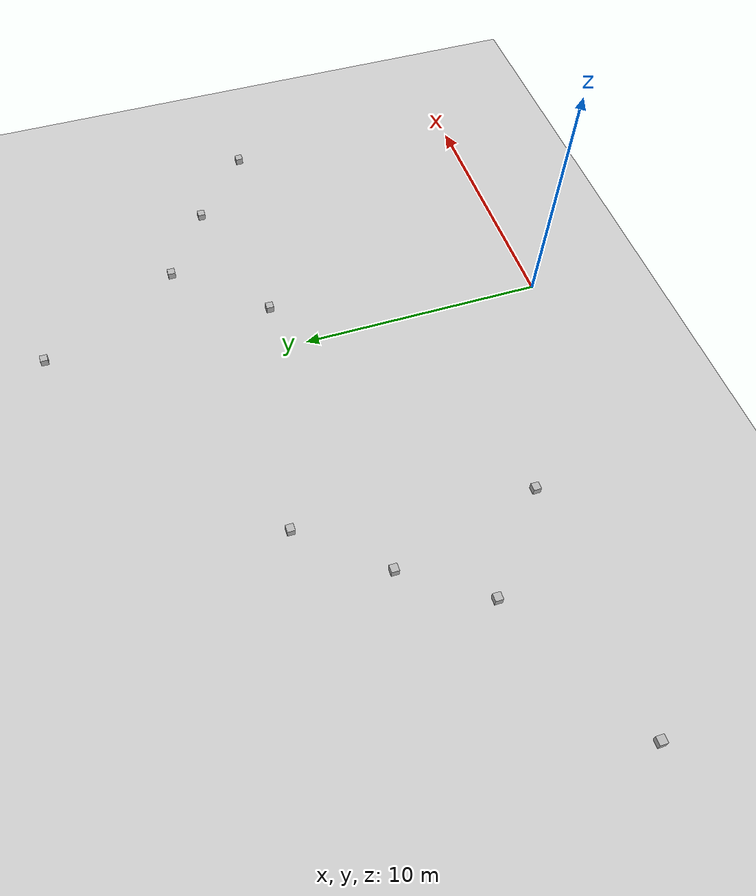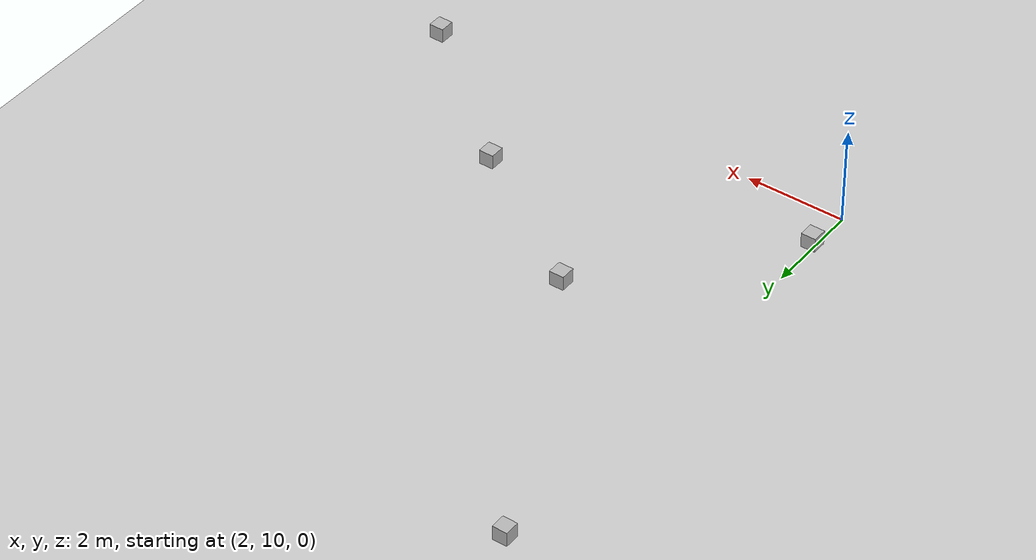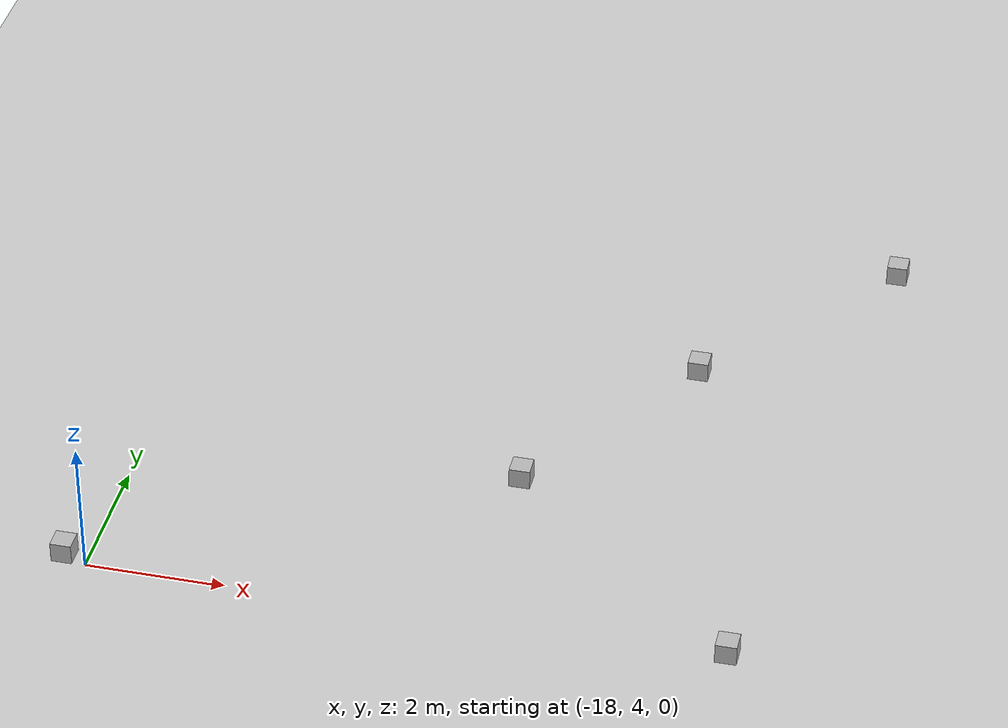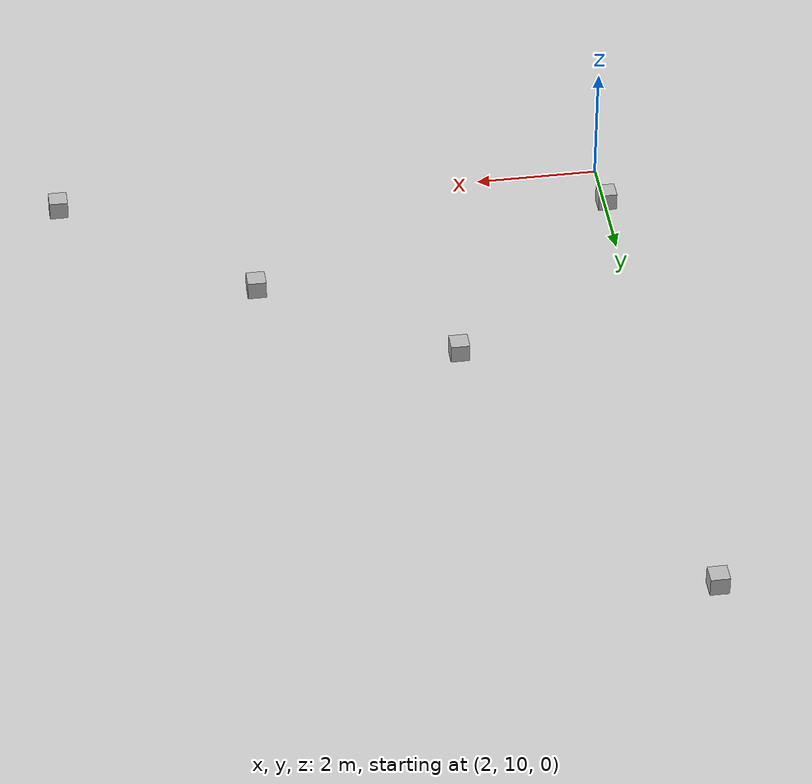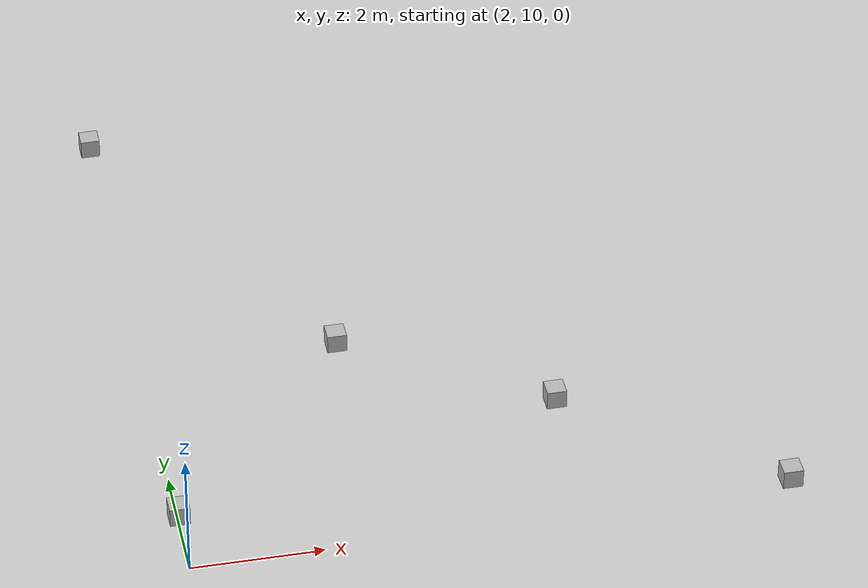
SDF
<?xml version="1.0" encoding="UTF-8"?>
<sdf version="1.9">
  <world name="maze">
    <physics type="ode">
      <max_step_size>0.004</max_step_size>
      <real_time_factor>1.0</real_time_factor>
      <real_time_update_rate>250</real_time_update_rate>
    </physics>
    <plugin name="gz::sim::systems::Physics" filename="gz-sim-physics-system" />
    <plugin name="gz::sim::systems::UserCommands" filename="gz-sim-user-commands-system" />
    <plugin name="gz::sim::systems::SceneBroadcaster" filename="gz-sim-scene-broadcaster-system" />
    <plugin name="gz::sim::systems::Contact" filename="gz-sim-contact-system" />
    <plugin name="gz::sim::systems::Imu" filename="gz-sim-imu-system" />
    <plugin name="gz::sim::systems::AirPressure" filename="gz-sim-air-pressure-system" />
    <plugin name="gz::sim::systems::ApplyLinkWrench" filename="gz-sim-apply-link-wrench-system" />
    <plugin name="gz::sim::systems::NavSat" filename="gz-sim-navsat-system" />
    <plugin name="gz::sim::systems::Sensors" filename="gz-sim-sensors-system">
      <render_engine>ogre2</render_engine>
    </plugin>

    <gui fullscreen="0">
      <plugin filename="GzScene3D" name="3D View">
        <gz-gui>
          <title>3D View</title>
          <property key="showTitleBar" type="bool">false</property>
          <property key="state" type="string">docked</property>
        </gz-gui>
        <engine>ogre2</engine>
        <scene>scene</scene>
        <ambient_light>0.4 0.4 0.4</ambient_light>
        <background_color>0.8 0.8 0.8</background_color>
        <camera_pose>-6 0 6 0 0.5 0</camera_pose>
      </plugin>
      <plugin filename="WorldControl" name="World control">
        <gz-gui>
          <title>World control</title>
          <property type="bool" key="showTitleBar">false</property>
          <property type="bool" key="resizable">false</property>
          <property type="double" key="height">72</property>
          <property type="double" key="width">150</property>
          <property type="double" key="z">1</property>
          <property type="string" key="state">floating</property>
          <anchors target="3D View">
            <line own="left" target="left" />
            <line own="bottom" target="bottom" />
          </anchors>
        </gz-gui>
        <play_pause>true</play_pause>
        <step>true</step>
        <start_paused>true</start_paused>
        <use_event>false</use_event>
        <start_paused>true</start_paused>
      </plugin>
      <plugin filename="WorldStats" name="World stats">
        <gz-gui>
          <title>World stats</title>
          <property type="bool" key="showTitleBar">false</property>
          <property type="bool" key="resizable">false</property>
          <property type="double" key="height">110</property>
          <property type="double" key="width">290</property>
          <property type="double" key="z">1</property>
          <property type="string" key="state">floating</property>
          <anchors target="3D View">
            <line own="right" target="right" />
            <line own="bottom" target="bottom" />
          </anchors>
        </gz-gui>
        <sim_time>false</sim_time>
        <real_time>false</real_time>
        <real_time_factor>true</real_time_factor>
        <iterations>true</iterations>
      </plugin>
      <plugin filename="Shapes" name="Shapes">
        <gz-gui>
          <property key="resizable" type="bool">false</property>
          <property key="x" type="double">0</property>
          <property key="y" type="double">0</property>
          <property key="width" type="double">250</property>
          <property key="height" type="double">50</property>
          <property key="state" type="string">floating</property>
          <property key="showTitleBar" type="bool">false</property>
          <property key="cardBackground" type="string">#666666</property>
        </gz-gui>
      </plugin>
      <plugin filename="Lights" name="Lights">
        <gz-gui>
          <property key="resizable" type="bool">false</property>
          <property key="x" type="double">250</property>
          <property key="y" type="double">0</property>
          <property key="width" type="double">150</property>
          <property key="height" type="double">50</property>
          <property key="state" type="string">floating</property>
          <property key="showTitleBar" type="bool">false</property>
          <property key="cardBackground" type="string">#666666</property>
        </gz-gui>
      </plugin>
      <plugin filename="TransformControl" name="Transform control">
        <gz-gui>
          <property key="resizable" type="bool">false</property>
          <property key="x" type="double">400</property>
          <property key="y" type="double">0</property>
          <property key="width" type="double">250</property>
          <property key="height" type="double">50</property>
          <property key="state" type="string">floating</property>
          <property key="showTitleBar" type="bool">false</property>
          <property key="cardBackground" type="string">#777777</property>
        </gz-gui>
      </plugin>
    </gui>

    <gravity>0 0 -9.8</gravity>
    <magnetic_field>6e-06 2.3e-05 -4.2e-05</magnetic_field>
    <atmosphere type="adiabatic" />
    <scene>
      <grid>false</grid>
      <ambient>0.4 0.4 0.4 1</ambient>
      <background>0.7 0.7 0.7 1</background>
      <shadows>true</shadows>
    </scene>

    <model name="ground_plane">
      <static>true</static>
      <link name="link">
        <collision name="collision">
          <geometry>
            <plane>
              <normal>0 0 1</normal>
              <size>1 1</size>
            </plane>
          </geometry>
          <surface>
            <friction>
              <ode />
            </friction>
            <bounce />
            <contact />
          </surface>
        </collision>
        <visual name="visual">
          <geometry>
            <plane>
              <normal>0 0 1</normal>
              <size>100 100</size>
            </plane>
          </geometry>
          <material>
            <ambient>0.8 0.8 0.8 1</ambient>
            <diffuse>0.8 0.8 0.8 1</diffuse>
            <specular>0.8 0.8 0.8 1</specular>
          </material>
        </visual>
        <pose>0 0 0 0 -0 0</pose>
        <inertial>
          <pose>0 0 0 0 -0 0</pose>
          <mass>1</mass>
          <inertia>
            <ixx>1</ixx>
            <ixy>0</ixy>
            <ixz>0</ixz>
            <iyy>1</iyy>
            <iyz>0</iyz>
            <izz>1</izz>
          </inertia>
        </inertial>
        <enable_wind>false</enable_wind>
      </link>
      <pose>0 0 0 0 -0 0</pose>
      <self_collide>false</self_collide>
    </model>

    <include>
      <name>cube_1</name>
      <pose>5 2 0 0 0 0</pose>
      <uri>model://cube</uri>
    </include>

    <include>
      <name>cube_2</name>
      <pose>0 7 0 0 0 1.57</pose>
      <uri>model://cube</uri>
    </include>

    <light name="sunUTC" type="directional">
      <pose>0 0 500 0 -0 0</pose>
      <cast_shadows>true</cast_shadows>
      <intensity>1</intensity>
      <direction>0.001 0.625 -0.78</direction>
      <diffuse>0.904 0.904 0.904 1</diffuse>
      <specular>0.271 0.271 0.271 1</specular>
      <attenuation>
        <range>2000</range>
        <linear>0</linear>
        <constant>1</constant>
        <quadratic>0</quadratic>
      </attenuation>
      <spot>
        <inner_angle>0</inner_angle>
        <outer_angle>0</outer_angle>
        <falloff>0</falloff>
      </spot>
    </light>

    <spherical_coordinates>
      <surface_model>EARTH_WGS84</surface_model>
      <world_frame_orientation>ENU</world_frame_orientation>
      <latitude_deg>47.397971057728974</latitude_deg>
      <longitude_deg> 8.546163739800146</longitude_deg>
      <elevation>0</elevation>
    </spherical_coordinates>
  </world>
</sdf>

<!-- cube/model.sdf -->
<sdf version="1.5">
    <model name="cube">
        <static>true</static>
        <link name="link">
            <collision name="collision1">
                <pose>0 12.5 0.1 0 0 0</pose>
                <geometry>
                    <mesh>
                        <uri>model://cube/meshes/cube.dae</uri>
                    </mesh>
                </geometry>
            </collision>
            <visual name="visual1">

              <pose>0 12.5 0.1 0 0 0</pose>
              <geometry>
              <mesh>
                 <uri>model://cube/meshes/cube.dae</uri>
              </mesh>
              </geometry>

              <material>
                  <script>
                      <uri>model://cube/materials/scripts</uri>
                      <uri>model://cube/materials/textures</uri>
                      <name>cubeMat/Diffuse</name>
                  </script>
              </material>
             </visual>

             <collision name="collision2">
                <pose>3 10.5 0.1 0 0 0</pose>
                <geometry>
                    <mesh>
                        <uri>model://cube/meshes/cube.dae</uri>
                    </mesh>
                </geometry>
            </collision>
            <visual name="visual2">

              <pose>3 10.5 0.1 0 0 0</pose>
              <geometry>
              <mesh>
                 <uri>model://cube/meshes/cube.dae</uri>
              </mesh>
              </geometry>

              <material>
                  <script>
                      <uri>model://cube/materials/scripts</uri>
                      <uri>model://cube/materials/textures</uri>
                      <name>cubeMat/Diffuse</name>
                  </script>
              </material>
             </visual>

             <collision name="collision3">
                <pose>-3 9 0.1 0 0 0</pose>
                <geometry>
                    <mesh>
                        <uri>model://cube/meshes/cube.dae</uri>
                    </mesh>
                </geometry>
            </collision>
            <visual name="visual3">

              <pose>-3 9 0.1 0 0 0</pose>
              <geometry>
              <mesh>
                 <uri>model://cube/meshes/cube.dae</uri>
              </mesh>
              </geometry>

              <material>
                  <script>
                      <uri>model://cube/materials/scripts</uri>
                      <uri>model://cube/materials/textures</uri>
                      <name>cubeMat/Diffuse</name>
                  </script>
              </material>
             </visual>

             <collision name="collision4">
                <pose>6 8 0.1 0 0 0</pose>
                <geometry>
                    <mesh>
                        <uri>model://cube/meshes/cube.dae</uri>
                    </mesh>
                </geometry>
            </collision>
            <visual name="visual4">

              <pose>6 8 0.1 0 0 0</pose>
              <geometry>
              <mesh>
                 <uri>model://cube/meshes/cube.dae</uri>
              </mesh>
              </geometry>

              <material>
                  <script>
                      <uri>model://cube/materials/scripts</uri>
                      <uri>model://cube/materials/textures</uri>
                      <name>cubeMat/Diffuse</name>
                  </script>
              </material>
             </visual>

             <collision name="collision5">
                <pose>-3 18.3 0.1 0 0 0</pose>
                <geometry>
                    <mesh>
                        <uri>model://cube/meshes/cube.dae</uri>
                    </mesh>
                </geometry>
            </collision>
            <visual name="visual5">

              <pose>-3 18.3 0.1 0 0 0</pose>
              <geometry>
              <mesh>
                 <uri>model://cube/meshes/cube.dae</uri>
              </mesh>
              </geometry>

              <material>
                  <script>
                      <uri>model://cube/materials/scripts</uri>
                      <uri>model://cube/materials/textures</uri>
                      <name>cubeMat/Diffuse</name>
                  </script>
              </material>
             </visual>
        </link>
    </model>
</sdf>
